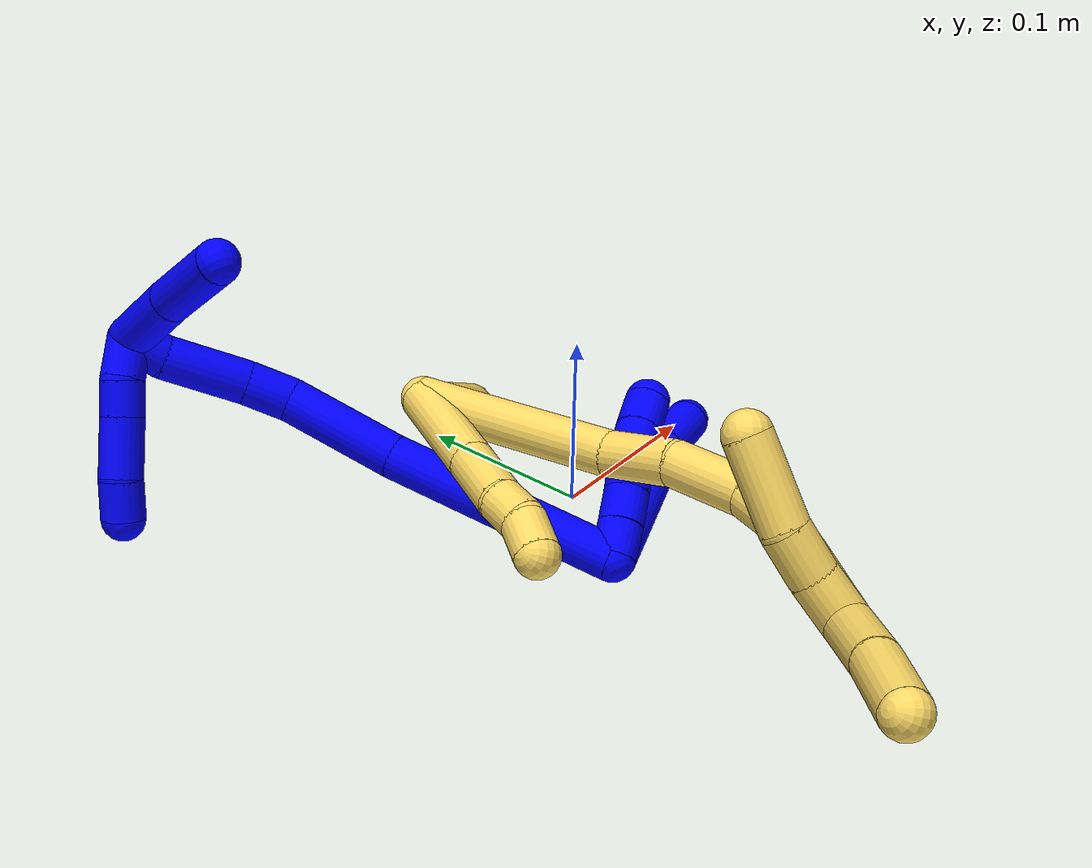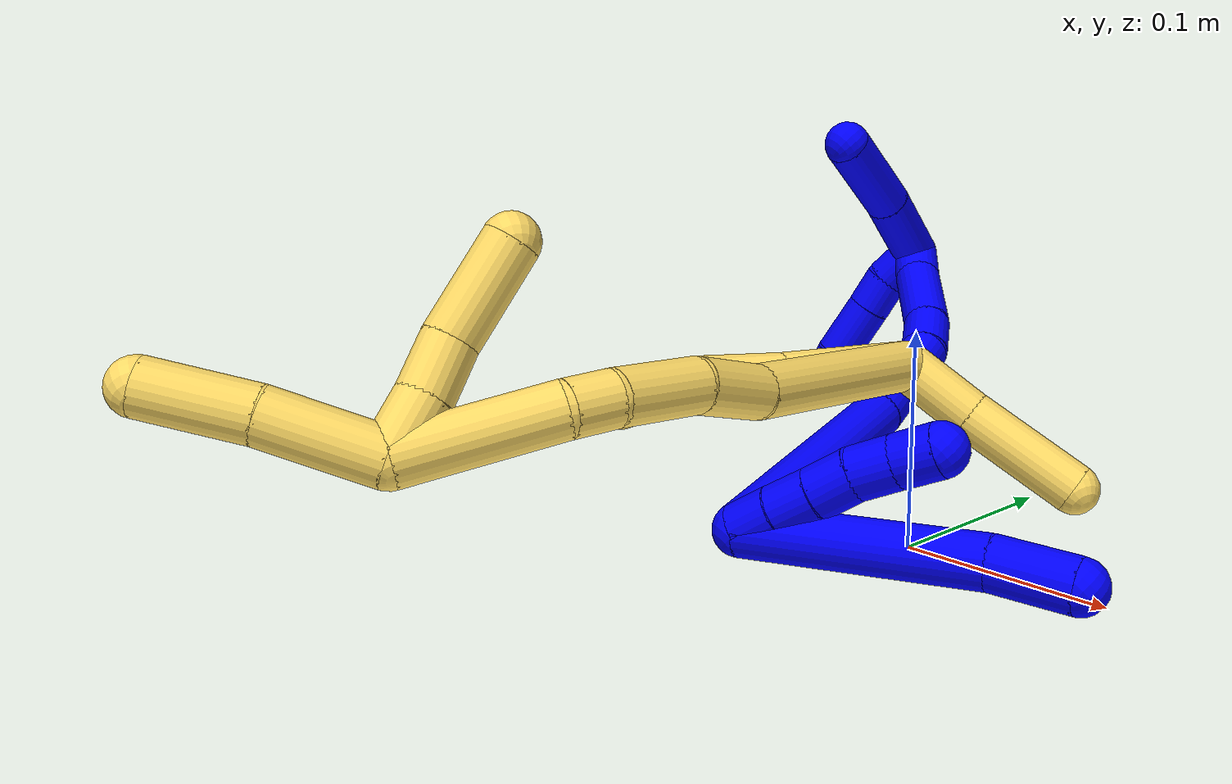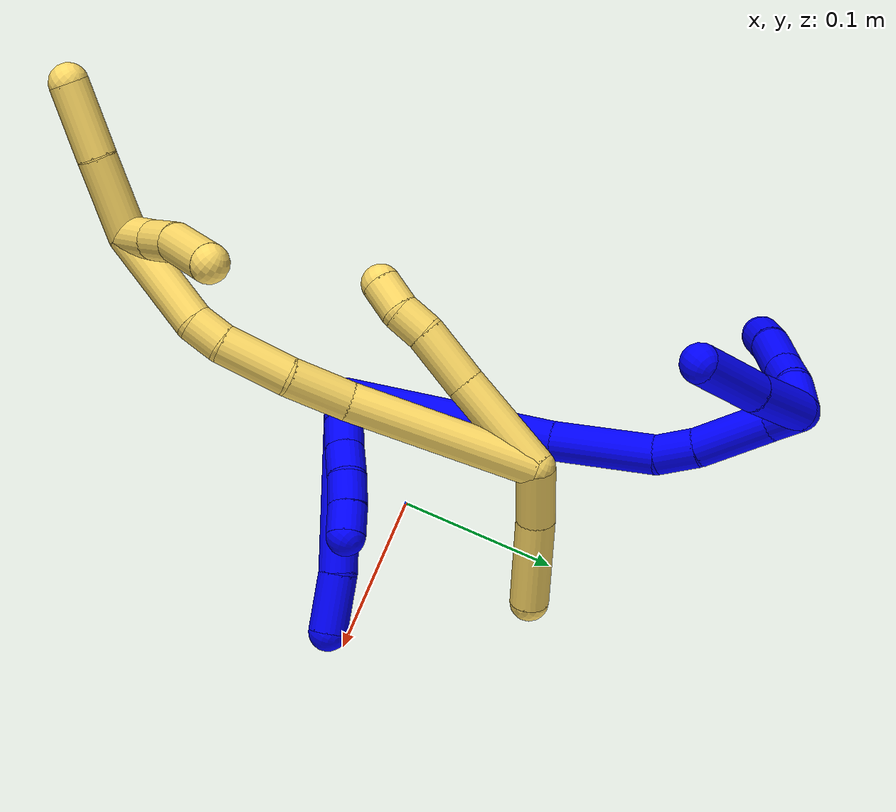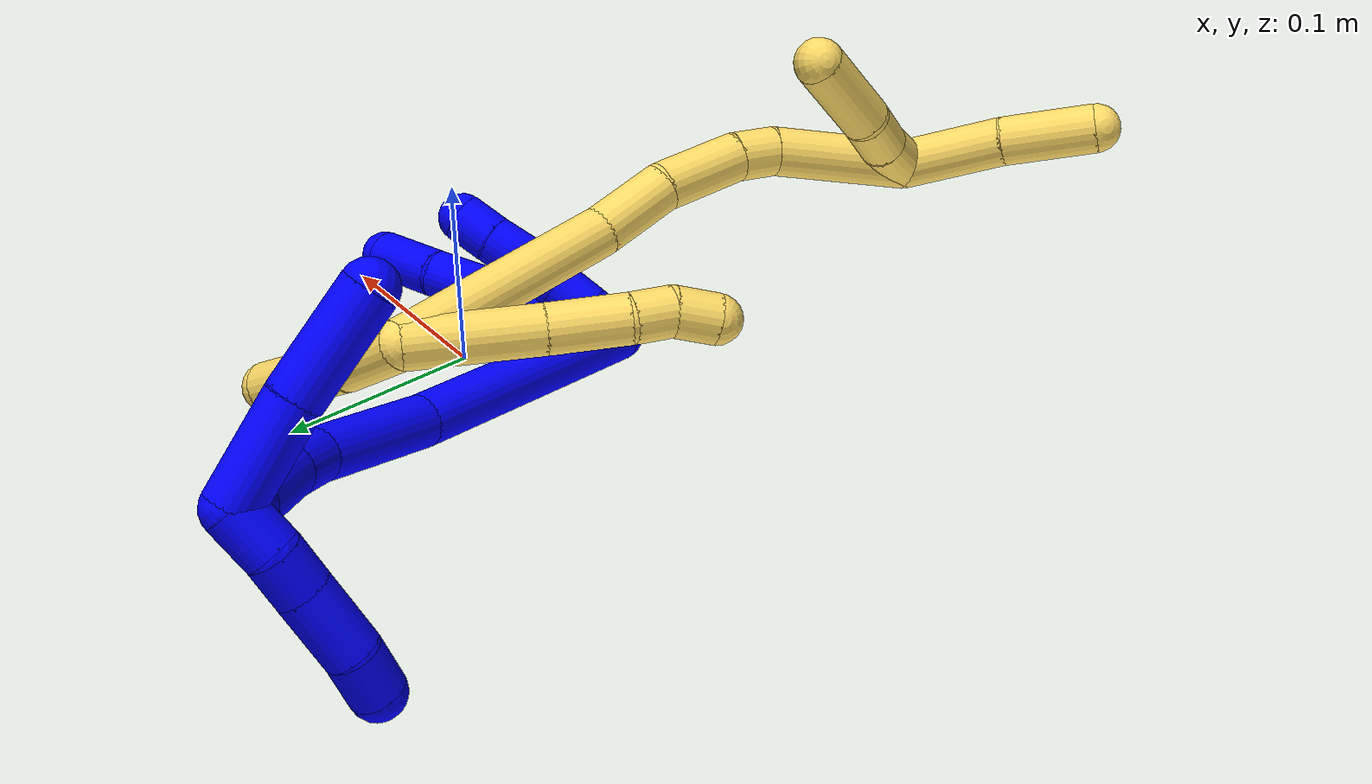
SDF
<sdf version="1.7">
 <world name="default">
  <model name="1">
   <static>0</static>
   <link name="1">
    <collision name="collision-cylinder-e_1_2_8">
     <pose>0.043331 0.019047 0.029953 -0.566393 0.884479 -0.273881</pose>
     <geometry><cylinder><radius>0.0125</radius><length>0.112028</length></cylinder></geometry>
     <surface>
      <friction><ode><mu>1.16</mu><mu2>1.16</mu2><slip1>0</slip1><slip2>0</slip2></ode></friction>
      <contact><ode><kp>1e+06</kp><kd>1</kd><max_vel>0</max_vel><min_depth>0.001</min_depth></ode></contact>
     </surface>
    </collision>
    <visual name="visual-cylinder-e_1_2_8">
     <pose>0.043331 0.019047 0.029953 -0.566393 0.884479 -0.273881</pose>
     <geometry><cylinder><radius>0.0125</radius><length>0.112028</length></cylinder></geometry>
     <material><ambient>0 0 1 1</ambient></material>
    </visual>
    <collision name="collision-cylinder-e_2_8_6">
     <pose>0.102914 0.044404 0.067424 -0.698284 1.02742 -0.405192</pose>
     <geometry><cylinder><radius>0.0125</radius><length>0.037972</length></cylinder></geometry>
     <surface>
      <friction><ode><mu>1.16</mu><mu2>1.16</mu2><slip1>0</slip1><slip2>0</slip2></ode></friction>
      <contact><ode><kp>1e+06</kp><kd>1</kd><max_vel>0</max_vel><min_depth>0.001</min_depth></ode></contact>
     </surface>
    </collision>
    <visual name="visual-cylinder-e_2_8_6">
     <pose>0.102914 0.044404 0.067424 -0.698284 1.02742 -0.405192</pose>
     <geometry><cylinder><radius>0.0125</radius><length>0.037972</length></cylinder></geometry>
     <material><ambient>0 0 1 1</ambient></material>
    </visual>
    <collision name="collision-cylinder-e_1_2_9">
     <pose>0.006094 -0.001065 0.007857 0.134735 0.655279 0.045856</pose>
     <geometry><cylinder><radius>0.0125</radius><length>0.02</length></cylinder></geometry>
     <surface>
      <friction><ode><mu>1.16</mu><mu2>1.16</mu2><slip1>0</slip1><slip2>0</slip2></ode></friction>
      <contact><ode><kp>1e+06</kp><kd>1</kd><max_vel>0</max_vel><min_depth>0.001</min_depth></ode></contact>
     </surface>
    </collision>
    <visual name="visual-cylinder-e_1_2_9">
     <pose>0.006094 -0.001065 0.007857 0.134735 0.655279 0.045856</pose>
     <geometry><cylinder><radius>0.0125</radius><length>0.02</length></cylinder></geometry>
     <material><ambient>0 0 1 1</ambient></material>
    </visual>
    <collision name="collision-cylinder-e_2_9_10">
     <pose>0.01809 -0.00271 0.023765 0.071867 0.631391 0.023482</pose>
     <geometry><cylinder><radius>0.0125</radius><length>0.02</length></cylinder></geometry>
     <surface>
      <friction><ode><mu>1.16</mu><mu2>1.16</mu2><slip1>0</slip1><slip2>0</slip2></ode></friction>
      <contact><ode><kp>1e+06</kp><kd>1</kd><max_vel>0</max_vel><min_depth>0.001</min_depth></ode></contact>
     </surface>
    </collision>
    <visual name="visual-cylinder-e_2_9_10">
     <pose>0.01809 -0.00271 0.023765 0.071867 0.631391 0.023482</pose>
     <geometry><cylinder><radius>0.0125</radius><length>0.02</length></cylinder></geometry>
     <material><ambient>0 0 1 1</ambient></material>
    </visual>
    <collision name="collision-cylinder-e_3_10_11">
     <pose>0.0295 -0.0039 0.040141 0.073247 0.583172 0.021993</pose>
     <geometry><cylinder><radius>0.0125</radius><length>0.02</length></cylinder></geometry>
     <surface>
      <friction><ode><mu>1.16</mu><mu2>1.16</mu2><slip1>0</slip1><slip2>0</slip2></ode></friction>
      <contact><ode><kp>1e+06</kp><kd>1</kd><max_vel>0</max_vel><min_depth>0.001</min_depth></ode></contact>
     </surface>
    </collision>
    <visual name="visual-cylinder-e_3_10_11">
     <pose>0.0295 -0.0039 0.040141 0.073247 0.583172 0.021993</pose>
     <geometry><cylinder><radius>0.0125</radius><length>0.02</length></cylinder></geometry>
     <material><ambient>0 0 1 1</ambient></material>
    </visual>
    <collision name="collision-cylinder-e_4_11_12">
     <pose>0.041542 -0.003891 0.05601 -0.082027 0.712235 -0.030527</pose>
     <geometry><cylinder><radius>0.0125</radius><length>0.02</length></cylinder></geometry>
     <surface>
      <friction><ode><mu>1.16</mu><mu2>1.16</mu2><slip1>0</slip1><slip2>0</slip2></ode></friction>
      <contact><ode><kp>1e+06</kp><kd>1</kd><max_vel>0</max_vel><min_depth>0.001</min_depth></ode></contact>
     </surface>
    </collision>
    <visual name="visual-cylinder-e_4_11_12">
     <pose>0.041542 -0.003891 0.05601 -0.082027 0.712235 -0.030527</pose>
     <geometry><cylinder><radius>0.0125</radius><length>0.02</length></cylinder></geometry>
     <material><ambient>0 0 1 1</ambient></material>
    </visual>
    <collision name="collision-cylinder-e_5_12_5">
     <pose>0.055154 -0.003058 0.070615 -0.030165 0.786179 -0.012509</pose>
     <geometry><cylinder><radius>0.0125</radius><length>0.02</length></cylinder></geometry>
     <surface>
      <friction><ode><mu>1.16</mu><mu2>1.16</mu2><slip1>0</slip1><slip2>0</slip2></ode></friction>
      <contact><ode><kp>1e+06</kp><kd>1</kd><max_vel>0</max_vel><min_depth>0.001</min_depth></ode></contact>
     </surface>
    </collision>
    <visual name="visual-cylinder-e_5_12_5">
     <pose>0.055154 -0.003058 0.070615 -0.030165 0.786179 -0.012509</pose>
     <geometry><cylinder><radius>0.0125</radius><length>0.02</length></cylinder></geometry>
     <material><ambient>0 0 1 1</ambient></material>
    </visual>
    <collision name="collision-cylinder-e_1_2_13">
     <pose>-0.032925 0.028428 0.052665 -0.494964 -0.502952 0.129643</pose>
     <geometry><cylinder><radius>0.0125</radius><length>0.136612</length></cylinder></geometry>
     <surface>
      <friction><ode><mu>1.16</mu><mu2>1.16</mu2><slip1>0</slip1><slip2>0</slip2></ode></friction>
      <contact><ode><kp>1e+06</kp><kd>1</kd><max_vel>0</max_vel><min_depth>0.001</min_depth></ode></contact>
     </surface>
    </collision>
    <visual name="visual-cylinder-e_1_2_13">
     <pose>-0.032925 0.028428 0.052665 -0.494964 -0.502952 0.129643</pose>
     <geometry><cylinder><radius>0.0125</radius><length>0.136612</length></cylinder></geometry>
     <material><ambient>0 0 1 1</ambient></material>
    </visual>
    <collision name="collision-cylinder-e_2_13_14">
     <pose>-0.083698 0.065986 0.132351 -0.325879 -0.559155 0.094326</pose>
     <geometry><cylinder><radius>0.0125</radius><length>0.067294</length></cylinder></geometry>
     <surface>
      <friction><ode><mu>1.16</mu><mu2>1.16</mu2><slip1>0</slip1><slip2>0</slip2></ode></friction>
      <contact><ode><kp>1e+06</kp><kd>1</kd><max_vel>0</max_vel><min_depth>0.001</min_depth></ode></contact>
     </surface>
    </collision>
    <visual name="visual-cylinder-e_2_13_14">
     <pose>-0.083698 0.065986 0.132351 -0.325879 -0.559155 0.094326</pose>
     <geometry><cylinder><radius>0.0125</radius><length>0.067294</length></cylinder></geometry>
     <material><ambient>0 0 1 1</ambient></material>
    </visual>
    <collision name="collision-cylinder-e_3_14_15">
     <pose>-0.111416 0.076421 0.168151 -0.147399 -0.838434 0.065782</pose>
     <geometry><cylinder><radius>0.0125</radius><length>0.026544</length></cylinder></geometry>
     <surface>
      <friction><ode><mu>1.16</mu><mu2>1.16</mu2><slip1>0</slip1><slip2>0</slip2></ode></friction>
      <contact><ode><kp>1e+06</kp><kd>1</kd><max_vel>0</max_vel><min_depth>0.001</min_depth></ode></contact>
     </surface>
    </collision>
    <visual name="visual-cylinder-e_3_14_15">
     <pose>-0.111416 0.076421 0.168151 -0.147399 -0.838434 0.065782</pose>
     <geometry><cylinder><radius>0.0125</radius><length>0.026544</length></cylinder></geometry>
     <material><ambient>0 0 1 1</ambient></material>
    </visual>
    <collision name="collision-cylinder-e_4_15_16">
     <pose>-0.141423 0.077911 0.190466 -0.013812 -0.978926 0.007358</pose>
     <geometry><cylinder><radius>0.0125</radius><length>0.048532</length></cylinder></geometry>
     <surface>
      <friction><ode><mu>1.16</mu><mu2>1.16</mu2><slip1>0</slip1><slip2>0</slip2></ode></friction>
      <contact><ode><kp>1e+06</kp><kd>1</kd><max_vel>0</max_vel><min_depth>0.001</min_depth></ode></contact>
     </surface>
    </collision>
    <visual name="visual-cylinder-e_4_15_16">
     <pose>-0.141423 0.077911 0.190466 -0.013812 -0.978926 0.007358</pose>
     <geometry><cylinder><radius>0.0125</radius><length>0.048532</length></cylinder></geometry>
     <material><ambient>0 0 1 1</ambient></material>
    </visual>
    <collision name="collision-cylinder-e_5_16_1">
     <pose>-0.16933 0.076213 0.210823 0.269723 -0.831976 -0.11974</pose>
     <geometry><cylinder><radius>0.0125</radius><length>0.021017</length></cylinder></geometry>
     <surface>
      <friction><ode><mu>1.16</mu><mu2>1.16</mu2><slip1>0</slip1><slip2>0</slip2></ode></friction>
      <contact><ode><kp>1e+06</kp><kd>1</kd><max_vel>0</max_vel><min_depth>0.001</min_depth></ode></contact>
     </surface>
    </collision>
    <visual name="visual-cylinder-e_5_16_1">
     <pose>-0.16933 0.076213 0.210823 0.269723 -0.831976 -0.11974</pose>
     <geometry><cylinder><radius>0.0125</radius><length>0.021017</length></cylinder></geometry>
     <material><ambient>0 0 1 1</ambient></material>
    </visual>
    <collision name="collision-cylinder-e_1_1_17">
     <pose>-0.171383 0.050968 0.216005 1.64085 0.239408 0.256611</pose>
     <geometry><cylinder><radius>0.0125</radius><length>0.048207</length></cylinder></geometry>
     <surface>
      <friction><ode><mu>1.16</mu><mu2>1.16</mu2><slip1>0</slip1><slip2>0</slip2></ode></friction>
      <contact><ode><kp>1e+06</kp><kd>1</kd><max_vel>0</max_vel><min_depth>0.001</min_depth></ode></contact>
     </surface>
    </collision>
    <visual name="visual-cylinder-e_1_1_17">
     <pose>-0.171383 0.050968 0.216005 1.64085 0.239408 0.256611</pose>
     <geometry><cylinder><radius>0.0125</radius><length>0.048207</length></cylinder></geometry>
     <material><ambient>0 0 1 1</ambient></material>
    </visual>
    <collision name="collision-cylinder-e_2_17_4">
     <pose>-0.160511 0.002469 0.210906 1.70758 0.200449 0.229687</pose>
     <geometry><cylinder><radius>0.0125</radius><length>0.051793</length></cylinder></geometry>
     <surface>
      <friction><ode><mu>1.16</mu><mu2>1.16</mu2><slip1>0</slip1><slip2>0</slip2></ode></friction>
      <contact><ode><kp>1e+06</kp><kd>1</kd><max_vel>0</max_vel><min_depth>0.001</min_depth></ode></contact>
     </surface>
    </collision>
    <visual name="visual-cylinder-e_2_17_4">
     <pose>-0.160511 0.002469 0.210906 1.70758 0.200449 0.229687</pose>
     <geometry><cylinder><radius>0.0125</radius><length>0.051793</length></cylinder></geometry>
     <material><ambient>0 0 1 1</ambient></material>
    </visual>
    <collision name="collision-cylinder-e_1_1_18">
     <pose>-0.18237 0.077592 0.20765 -2.82584 -0.464749 1.95722</pose>
     <geometry><cylinder><radius>0.0125</radius><length>0.023523</length></cylinder></geometry>
     <surface>
      <friction><ode><mu>1.16</mu><mu2>1.16</mu2><slip1>0</slip1><slip2>0</slip2></ode></friction>
      <contact><ode><kp>1e+06</kp><kd>1</kd><max_vel>0</max_vel><min_depth>0.001</min_depth></ode></contact>
     </surface>
    </collision>
    <visual name="visual-cylinder-e_1_1_18">
     <pose>-0.18237 0.077592 0.20765 -2.82584 -0.464749 1.95722</pose>
     <geometry><cylinder><radius>0.0125</radius><length>0.023523</length></cylinder></geometry>
     <material><ambient>0 0 1 1</ambient></material>
    </visual>
    <collision name="collision-cylinder-e_2_18_19">
     <pose>-0.189972 0.085278 0.188866 -2.6755 -0.232569 0.914669</pose>
     <geometry><cylinder><radius>0.0125</radius><length>0.020222</length></cylinder></geometry>
     <surface>
      <friction><ode><mu>1.16</mu><mu2>1.16</mu2><slip1>0</slip1><slip2>0</slip2></ode></friction>
      <contact><ode><kp>1e+06</kp><kd>1</kd><max_vel>0</max_vel><min_depth>0.001</min_depth></ode></contact>
     </surface>
    </collision>
    <visual name="visual-cylinder-e_2_18_19">
     <pose>-0.189972 0.085278 0.188866 -2.6755 -0.232569 0.914669</pose>
     <geometry><cylinder><radius>0.0125</radius><length>0.020222</length></cylinder></geometry>
     <material><ambient>0 0 1 1</ambient></material>
    </visual>
    <collision name="collision-cylinder-e_3_19_20">
     <pose>-0.196754 0.096859 0.165313 -2.69006 -0.264895 1.05125</pose>
     <geometry><cylinder><radius>0.0125</radius><length>0.034002</length></cylinder></geometry>
     <surface>
      <friction><ode><mu>1.16</mu><mu2>1.16</mu2><slip1>0</slip1><slip2>0</slip2></ode></friction>
      <contact><ode><kp>1e+06</kp><kd>1</kd><max_vel>0</max_vel><min_depth>0.001</min_depth></ode></contact>
     </surface>
    </collision>
    <visual name="visual-cylinder-e_3_19_20">
     <pose>-0.196754 0.096859 0.165313 -2.69006 -0.264895 1.05125</pose>
     <geometry><cylinder><radius>0.0125</radius><length>0.034002</length></cylinder></geometry>
     <material><ambient>0 0 1 1</ambient></material>
    </visual>
    <collision name="collision-cylinder-e_4_20_3">
     <pose>-0.202623 0.110004 0.141278 -2.56832 -0.127812 0.42758</pose>
     <geometry><cylinder><radius>0.0125</radius><length>0.022252</length></cylinder></geometry>
     <surface>
      <friction><ode><mu>1.16</mu><mu2>1.16</mu2><slip1>0</slip1><slip2>0</slip2></ode></friction>
      <contact><ode><kp>1e+06</kp><kd>1</kd><max_vel>0</max_vel><min_depth>0.001</min_depth></ode></contact>
     </surface>
    </collision>
    <visual name="visual-cylinder-e_4_20_3">
     <pose>-0.202623 0.110004 0.141278 -2.56832 -0.127812 0.42758</pose>
     <geometry><cylinder><radius>0.0125</radius><length>0.022252</length></cylinder></geometry>
     <material><ambient>0 0 1 1</ambient></material>
    </visual>
    <collision name="collision-sphere-3">
     <pose>-0.204041 0.11599 0.132007 0 -0 0</pose>
     <geometry><sphere><radius>0.0125</radius></sphere></geometry>
     <surface>
      <friction><ode><mu>1.16</mu><mu2>1.16</mu2><slip1>0</slip1><slip2>0</slip2></ode></friction>
      <contact><ode><kp>1e+06</kp><kd>1</kd><max_vel>0</max_vel><min_depth>0.001</min_depth></ode></contact>
     </surface>
    </collision>
    <visual name="visual-sphere-3">
     <pose>-0.204041 0.11599 0.132007 0 -0 0</pose>
     <geometry><sphere><radius>0.0125</radius></sphere></geometry>
     <material><ambient>0 0 1 1</ambient></material>
    </visual>
    <collision name="collision-sphere-20">
     <pose>-0.201205 0.104019 0.150549 0 -0 0</pose>
     <geometry><sphere><radius>0.0125</radius></sphere></geometry>
     <surface>
      <friction><ode><mu>1.16</mu><mu2>1.16</mu2><slip1>0</slip1><slip2>0</slip2></ode></friction>
      <contact><ode><kp>1e+06</kp><kd>1</kd><max_vel>0</max_vel><min_depth>0.001</min_depth></ode></contact>
     </surface>
    </collision>
    <visual name="visual-sphere-20">
     <pose>-0.201205 0.104019 0.150549 0 -0 0</pose>
     <geometry><sphere><radius>0.0125</radius></sphere></geometry>
     <material><ambient>0 0 1 1</ambient></material>
    </visual>
    <collision name="collision-sphere-19">
     <pose>-0.192303 0.0897 0.180077 0 -0 0</pose>
     <geometry><sphere><radius>0.0125</radius></sphere></geometry>
     <surface>
      <friction><ode><mu>1.16</mu><mu2>1.16</mu2><slip1>0</slip1><slip2>0</slip2></ode></friction>
      <contact><ode><kp>1e+06</kp><kd>1</kd><max_vel>0</max_vel><min_depth>0.001</min_depth></ode></contact>
     </surface>
    </collision>
    <visual name="visual-sphere-19">
     <pose>-0.192303 0.0897 0.180077 0 -0 0</pose>
     <geometry><sphere><radius>0.0125</radius></sphere></geometry>
     <material><ambient>0 0 1 1</ambient></material>
    </visual>
    <collision name="collision-sphere-11">
     <pose>0.035006 -0.004511 0.048466 0 -0 0</pose>
     <geometry><sphere><radius>0.0125</radius></sphere></geometry>
     <surface>
      <friction><ode><mu>1.16</mu><mu2>1.16</mu2><slip1>0</slip1><slip2>0</slip2></ode></friction>
      <contact><ode><kp>1e+06</kp><kd>1</kd><max_vel>0</max_vel><min_depth>0.001</min_depth></ode></contact>
     </surface>
    </collision>
    <visual name="visual-sphere-11">
     <pose>0.035006 -0.004511 0.048466 0 -0 0</pose>
     <geometry><sphere><radius>0.0125</radius></sphere></geometry>
     <material><ambient>0 0 1 1</ambient></material>
    </visual>
    <collision name="collision-sphere-10">
     <pose>0.023993 -0.003289 0.031816 0 -0 0</pose>
     <geometry><sphere><radius>0.0125</radius></sphere></geometry>
     <surface>
      <friction><ode><mu>1.16</mu><mu2>1.16</mu2><slip1>0</slip1><slip2>0</slip2></ode></friction>
      <contact><ode><kp>1e+06</kp><kd>1</kd><max_vel>0</max_vel><min_depth>0.001</min_depth></ode></contact>
     </surface>
    </collision>
    <visual name="visual-sphere-10">
     <pose>0.023993 -0.003289 0.031816 0 -0 0</pose>
     <geometry><sphere><radius>0.0125</radius></sphere></geometry>
     <material><ambient>0 0 1 1</ambient></material>
    </visual>
    <collision name="collision-sphere-6">
     <pose>0.119166 0.050715 0.074943 0 -0 0</pose>
     <geometry><sphere><radius>0.0125</radius></sphere></geometry>
     <surface>
      <friction><ode><mu>1.16</mu><mu2>1.16</mu2><slip1>0</slip1><slip2>0</slip2></ode></friction>
      <contact><ode><kp>1e+06</kp><kd>1</kd><max_vel>0</max_vel><min_depth>0.001</min_depth></ode></contact>
     </surface>
    </collision>
    <visual name="visual-sphere-6">
     <pose>0.119166 0.050715 0.074943 0 -0 0</pose>
     <geometry><sphere><radius>0.0125</radius></sphere></geometry>
     <material><ambient>0 0 1 1</ambient></material>
    </visual>
    <collision name="collision-sphere-9">
     <pose>0.012188 -0.00213 0.015714 0 -0 0</pose>
     <geometry><sphere><radius>0.0125</radius></sphere></geometry>
     <surface>
      <friction><ode><mu>1.16</mu><mu2>1.16</mu2><slip1>0</slip1><slip2>0</slip2></ode></friction>
      <contact><ode><kp>1e+06</kp><kd>1</kd><max_vel>0</max_vel><min_depth>0.001</min_depth></ode></contact>
     </surface>
    </collision>
    <visual name="visual-sphere-9">
     <pose>0.012188 -0.00213 0.015714 0 -0 0</pose>
     <geometry><sphere><radius>0.0125</radius></sphere></geometry>
     <material><ambient>0 0 1 1</ambient></material>
    </visual>
    <collision name="collision-sphere-2">
     <geometry><sphere><radius>0.0125</radius></sphere></geometry>
     <surface>
      <friction><ode><mu>1.16</mu><mu2>1.16</mu2><slip1>0</slip1><slip2>0</slip2></ode></friction>
      <contact><ode><kp>1e+06</kp><kd>1</kd><max_vel>0</max_vel><min_depth>0.001</min_depth></ode></contact>
     </surface>
    </collision>
    <visual name="visual-sphere-2">
     <geometry><sphere><radius>0.0125</radius></sphere></geometry>
     <material><ambient>0 0 1 1</ambient></material>
    </visual>
    <collision name="collision-sphere-8">
     <pose>0.086663 0.038093 0.059905 0 -0 0</pose>
     <geometry><sphere><radius>0.0125</radius></sphere></geometry>
     <surface>
      <friction><ode><mu>1.16</mu><mu2>1.16</mu2><slip1>0</slip1><slip2>0</slip2></ode></friction>
      <contact><ode><kp>1e+06</kp><kd>1</kd><max_vel>0</max_vel><min_depth>0.001</min_depth></ode></contact>
     </surface>
    </collision>
    <visual name="visual-sphere-8">
     <pose>0.086663 0.038093 0.059905 0 -0 0</pose>
     <geometry><sphere><radius>0.0125</radius></sphere></geometry>
     <material><ambient>0 0 1 1</ambient></material>
    </visual>
    <collision name="collision-sphere-12">
     <pose>0.048077 -0.003271 0.063553 0 -0 0</pose>
     <geometry><sphere><radius>0.0125</radius></sphere></geometry>
     <surface>
      <friction><ode><mu>1.16</mu><mu2>1.16</mu2><slip1>0</slip1><slip2>0</slip2></ode></friction>
      <contact><ode><kp>1e+06</kp><kd>1</kd><max_vel>0</max_vel><min_depth>0.001</min_depth></ode></contact>
     </surface>
    </collision>
    <visual name="visual-sphere-12">
     <pose>0.048077 -0.003271 0.063553 0 -0 0</pose>
     <geometry><sphere><radius>0.0125</radius></sphere></geometry>
     <material><ambient>0 0 1 1</ambient></material>
    </visual>
    <collision name="collision-sphere-5">
     <pose>0.06223 -0.002845 0.077678 0 -0 0</pose>
     <geometry><sphere><radius>0.0125</radius></sphere></geometry>
     <surface>
      <friction><ode><mu>1.16</mu><mu2>1.16</mu2><slip1>0</slip1><slip2>0</slip2></ode></friction>
      <contact><ode><kp>1e+06</kp><kd>1</kd><max_vel>0</max_vel><min_depth>0.001</min_depth></ode></contact>
     </surface>
    </collision>
    <visual name="visual-sphere-5">
     <pose>0.06223 -0.002845 0.077678 0 -0 0</pose>
     <geometry><sphere><radius>0.0125</radius></sphere></geometry>
     <material><ambient>0 0 1 1</ambient></material>
    </visual>
    <collision name="collision-sphere-13">
     <pose>-0.065849 0.056855 0.10533 0 -0 0</pose>
     <geometry><sphere><radius>0.0125</radius></sphere></geometry>
     <surface>
      <friction><ode><mu>1.16</mu><mu2>1.16</mu2><slip1>0</slip1><slip2>0</slip2></ode></friction>
      <contact><ode><kp>1e+06</kp><kd>1</kd><max_vel>0</max_vel><min_depth>0.001</min_depth></ode></contact>
     </surface>
    </collision>
    <visual name="visual-sphere-13">
     <pose>-0.065849 0.056855 0.10533 0 -0 0</pose>
     <geometry><sphere><radius>0.0125</radius></sphere></geometry>
     <material><ambient>0 0 1 1</ambient></material>
    </visual>
    <collision name="collision-sphere-14">
     <pose>-0.101547 0.075118 0.159373 0 -0 0</pose>
     <geometry><sphere><radius>0.0125</radius></sphere></geometry>
     <surface>
      <friction><ode><mu>1.16</mu><mu2>1.16</mu2><slip1>0</slip1><slip2>0</slip2></ode></friction>
      <contact><ode><kp>1e+06</kp><kd>1</kd><max_vel>0</max_vel><min_depth>0.001</min_depth></ode></contact>
     </surface>
    </collision>
    <visual name="visual-sphere-14">
     <pose>-0.101547 0.075118 0.159373 0 -0 0</pose>
     <geometry><sphere><radius>0.0125</radius></sphere></geometry>
     <material><ambient>0 0 1 1</ambient></material>
    </visual>
    <collision name="collision-sphere-15">
     <pose>-0.121285 0.077724 0.176928 0 -0 0</pose>
     <geometry><sphere><radius>0.0125</radius></sphere></geometry>
     <surface>
      <friction><ode><mu>1.16</mu><mu2>1.16</mu2><slip1>0</slip1><slip2>0</slip2></ode></friction>
      <contact><ode><kp>1e+06</kp><kd>1</kd><max_vel>0</max_vel><min_depth>0.001</min_depth></ode></contact>
     </surface>
    </collision>
    <visual name="visual-sphere-15">
     <pose>-0.121285 0.077724 0.176928 0 -0 0</pose>
     <geometry><sphere><radius>0.0125</radius></sphere></geometry>
     <material><ambient>0 0 1 1</ambient></material>
    </visual>
    <collision name="collision-sphere-16">
     <pose>-0.161561 0.078098 0.204003 0 -0 0</pose>
     <geometry><sphere><radius>0.0125</radius></sphere></geometry>
     <surface>
      <friction><ode><mu>1.16</mu><mu2>1.16</mu2><slip1>0</slip1><slip2>0</slip2></ode></friction>
      <contact><ode><kp>1e+06</kp><kd>1</kd><max_vel>0</max_vel><min_depth>0.001</min_depth></ode></contact>
     </surface>
    </collision>
    <visual name="visual-sphere-16">
     <pose>-0.161561 0.078098 0.204003 0 -0 0</pose>
     <geometry><sphere><radius>0.0125</radius></sphere></geometry>
     <material><ambient>0 0 1 1</ambient></material>
    </visual>
    <collision name="collision-sphere-1">
     <pose>-0.177099 0.074327 0.217644 0 -0 0</pose>
     <geometry><sphere><radius>0.0125</radius></sphere></geometry>
     <surface>
      <friction><ode><mu>1.16</mu><mu2>1.16</mu2><slip1>0</slip1><slip2>0</slip2></ode></friction>
      <contact><ode><kp>1e+06</kp><kd>1</kd><max_vel>0</max_vel><min_depth>0.001</min_depth></ode></contact>
     </surface>
    </collision>
    <visual name="visual-sphere-1">
     <pose>-0.177099 0.074327 0.217644 0 -0 0</pose>
     <geometry><sphere><radius>0.0125</radius></sphere></geometry>
     <material><ambient>0 0 1 1</ambient></material>
    </visual>
    <collision name="collision-sphere-18">
     <pose>-0.187642 0.080857 0.197656 0 -0 0</pose>
     <geometry><sphere><radius>0.0125</radius></sphere></geometry>
     <surface>
      <friction><ode><mu>1.16</mu><mu2>1.16</mu2><slip1>0</slip1><slip2>0</slip2></ode></friction>
      <contact><ode><kp>1e+06</kp><kd>1</kd><max_vel>0</max_vel><min_depth>0.001</min_depth></ode></contact>
     </surface>
    </collision>
    <visual name="visual-sphere-18">
     <pose>-0.187642 0.080857 0.197656 0 -0 0</pose>
     <geometry><sphere><radius>0.0125</radius></sphere></geometry>
     <material><ambient>0 0 1 1</ambient></material>
    </visual>
    <collision name="collision-sphere-17">
     <pose>-0.165668 0.02761 0.214366 0 -0 0</pose>
     <geometry><sphere><radius>0.0125</radius></sphere></geometry>
     <surface>
      <friction><ode><mu>1.16</mu><mu2>1.16</mu2><slip1>0</slip1><slip2>0</slip2></ode></friction>
      <contact><ode><kp>1e+06</kp><kd>1</kd><max_vel>0</max_vel><min_depth>0.001</min_depth></ode></contact>
     </surface>
    </collision>
    <visual name="visual-sphere-17">
     <pose>-0.165668 0.02761 0.214366 0 -0 0</pose>
     <geometry><sphere><radius>0.0125</radius></sphere></geometry>
     <material><ambient>0 0 1 1</ambient></material>
    </visual>
    <collision name="collision-sphere-4">
     <pose>-0.155355 -0.022672 0.207446 0 -0 0</pose>
     <geometry><sphere><radius>0.0125</radius></sphere></geometry>
     <surface>
      <friction><ode><mu>1.16</mu><mu2>1.16</mu2><slip1>0</slip1><slip2>0</slip2></ode></friction>
      <contact><ode><kp>1e+06</kp><kd>1</kd><max_vel>0</max_vel><min_depth>0.001</min_depth></ode></contact>
     </surface>
    </collision>
    <visual name="visual-sphere-4">
     <pose>-0.155355 -0.022672 0.207446 0 -0 0</pose>
     <geometry><sphere><radius>0.0125</radius></sphere></geometry>
     <material><ambient>0 0 1 1</ambient></material>
    </visual>
    <inertial>
     <pose>-0.063528 0.041518 0.11057 0 -0 0</pose>
     <mass>0.75</mass>
     <inertia>
      <ixx>0.00035</ixx>
      <ixy>0</ixy>
      <ixz>0</ixz>
      <iyy>0.000384</iyy>
      <iyz>0</iyz>
      <izz>-7.4e-05</izz>
     </inertia>
    </inertial>
   </link>
   <pose>-0.046306 -0.062907 0.0123 -0.915555 0.052481 -0.304359</pose>
  </model>
  <model name="5">
   <static>0</static>
   <link name="5">
    <collision name="collision-cylinder-e_1_2_8">
     <pose>-0.023593 -0.02376 0.002569 1.46311 -0.778971 -0.706069</pose>
     <geometry><cylinder><radius>0.0125</radius><length>0.067165</length></cylinder></geometry>
     <surface>
      <friction><ode><mu>1.16</mu><mu2>1.16</mu2><slip1>0</slip1><slip2>0</slip2></ode></friction>
      <contact><ode><kp>1e+06</kp><kd>1</kd><max_vel>0</max_vel><min_depth>0.001</min_depth></ode></contact>
     </surface>
    </collision>
    <visual name="visual-cylinder-e_1_2_8">
     <pose>-0.023593 -0.02376 0.002569 1.46311 -0.778971 -0.706069</pose>
     <geometry><cylinder><radius>0.0125</radius><length>0.067165</length></cylinder></geometry>
     <material><ambient>1 0.858824 0.4 1</ambient></material>
    </visual>
    <collision name="collision-cylinder-e_2_8_9">
     <pose>-0.060828 -0.061896 0.007606 1.40074 -0.751956 -0.642447</pose>
     <geometry><cylinder><radius>0.0125</radius><length>0.039943</length></cylinder></geometry>
     <surface>
      <friction><ode><mu>1.16</mu><mu2>1.16</mu2><slip1>0</slip1><slip2>0</slip2></ode></friction>
      <contact><ode><kp>1e+06</kp><kd>1</kd><max_vel>0</max_vel><min_depth>0.001</min_depth></ode></contact>
     </surface>
    </collision>
    <visual name="visual-cylinder-e_2_8_9">
     <pose>-0.060828 -0.061896 0.007606 1.40074 -0.751956 -0.642447</pose>
     <geometry><cylinder><radius>0.0125</radius><length>0.039943</length></cylinder></geometry>
     <material><ambient>1 0.858824 0.4 1</ambient></material>
    </visual>
    <collision name="collision-cylinder-e_3_9_10">
     <pose>-0.081328 -0.084058 0.009346 1.66414 -0.719957 -0.783771</pose>
     <geometry><cylinder><radius>0.0125</radius><length>0.020802</length></cylinder></geometry>
     <surface>
      <friction><ode><mu>1.16</mu><mu2>1.16</mu2><slip1>0</slip1><slip2>0</slip2></ode></friction>
      <contact><ode><kp>1e+06</kp><kd>1</kd><max_vel>0</max_vel><min_depth>0.001</min_depth></ode></contact>
     </surface>
    </collision>
    <visual name="visual-cylinder-e_3_9_10">
     <pose>-0.081328 -0.084058 0.009346 1.66414 -0.719957 -0.783771</pose>
     <geometry><cylinder><radius>0.0125</radius><length>0.020802</length></cylinder></geometry>
     <material><ambient>1 0.858824 0.4 1</ambient></material>
    </visual>
    <collision name="collision-cylinder-e_4_10_6">
     <pose>-0.09781 -0.09726 0.008845 1.52858 -1.0578 -1.02139</pose>
     <geometry><cylinder><radius>0.0125</radius><length>0.02209</length></cylinder></geometry>
     <surface>
      <friction><ode><mu>1.16</mu><mu2>1.16</mu2><slip1>0</slip1><slip2>0</slip2></ode></friction>
      <contact><ode><kp>1e+06</kp><kd>1</kd><max_vel>0</max_vel><min_depth>0.001</min_depth></ode></contact>
     </surface>
    </collision>
    <visual name="visual-cylinder-e_4_10_6">
     <pose>-0.09781 -0.09726 0.008845 1.52858 -1.0578 -1.02139</pose>
     <geometry><cylinder><radius>0.0125</radius><length>0.02209</length></cylinder></geometry>
     <material><ambient>1 0.858824 0.4 1</ambient></material>
    </visual>
    <collision name="collision-cylinder-e_1_2_11">
     <pose>0.004785 0.011175 -0.015408 -2.51411 0.246281 -0.728837</pose>
     <geometry><cylinder><radius>0.0125</radius><length>0.039251</length></cylinder></geometry>
     <surface>
      <friction><ode><mu>1.16</mu><mu2>1.16</mu2><slip1>0</slip1><slip2>0</slip2></ode></friction>
      <contact><ode><kp>1e+06</kp><kd>1</kd><max_vel>0</max_vel><min_depth>0.001</min_depth></ode></contact>
     </surface>
    </collision>
    <visual name="visual-cylinder-e_1_2_11">
     <pose>0.004785 0.011175 -0.015408 -2.51411 0.246281 -0.728837</pose>
     <geometry><cylinder><radius>0.0125</radius><length>0.039251</length></cylinder></geometry>
     <material><ambient>1 0.858824 0.4 1</ambient></material>
    </visual>
    <collision name="collision-cylinder-e_2_11_5">
     <pose>0.0185 0.037383 -0.055651 -2.59726 0.298429 -0.988174</pose>
     <geometry><cylinder><radius>0.0125</radius><length>0.060749</length></cylinder></geometry>
     <surface>
      <friction><ode><mu>1.16</mu><mu2>1.16</mu2><slip1>0</slip1><slip2>0</slip2></ode></friction>
      <contact><ode><kp>1e+06</kp><kd>1</kd><max_vel>0</max_vel><min_depth>0.001</min_depth></ode></contact>
     </surface>
    </collision>
    <visual name="visual-cylinder-e_2_11_5">
     <pose>0.0185 0.037383 -0.055651 -2.59726 0.298429 -0.988174</pose>
     <geometry><cylinder><radius>0.0125</radius><length>0.060749</length></cylinder></geometry>
     <material><ambient>1 0.858824 0.4 1</ambient></material>
    </visual>
    <collision name="collision-cylinder-e_1_2_12">
     <pose>-0.022837 -0.05317 -0.019428 1.92112 -0.38345 -0.541542</pose>
     <geometry><cylinder><radius>0.0125</radius><length>0.122082</length></cylinder></geometry>
     <surface>
      <friction><ode><mu>1.16</mu><mu2>1.16</mu2><slip1>0</slip1><slip2>0</slip2></ode></friction>
      <contact><ode><kp>1e+06</kp><kd>1</kd><max_vel>0</max_vel><min_depth>0.001</min_depth></ode></contact>
     </surface>
    </collision>
    <visual name="visual-cylinder-e_1_2_12">
     <pose>-0.022837 -0.05317 -0.019428 1.92112 -0.38345 -0.541542</pose>
     <geometry><cylinder><radius>0.0125</radius><length>0.122082</length></cylinder></geometry>
     <material><ambient>1 0.858824 0.4 1</ambient></material>
    </visual>
    <collision name="collision-cylinder-e_2_12_13">
     <pose>-0.05128 -0.125313 -0.042562 1.76371 -0.282279 -0.341688</pose>
     <geometry><cylinder><radius>0.0125</radius><length>0.040257</length></cylinder></geometry>
     <surface>
      <friction><ode><mu>1.16</mu><mu2>1.16</mu2><slip1>0</slip1><slip2>0</slip2></ode></friction>
      <contact><ode><kp>1e+06</kp><kd>1</kd><max_vel>0</max_vel><min_depth>0.001</min_depth></ode></contact>
     </surface>
    </collision>
    <visual name="visual-cylinder-e_2_12_13">
     <pose>-0.05128 -0.125313 -0.042562 1.76371 -0.282279 -0.341688</pose>
     <geometry><cylinder><radius>0.0125</radius><length>0.040257</length></cylinder></geometry>
     <material><ambient>1 0.858824 0.4 1</ambient></material>
    </visual>
    <collision name="collision-cylinder-e_3_13_14">
     <pose>-0.06756 -0.163483 -0.051621 1.84271 -0.491664 -0.638278</pose>
     <geometry><cylinder><radius>0.0125</radius><length>0.045215</length></cylinder></geometry>
     <surface>
      <friction><ode><mu>1.16</mu><mu2>1.16</mu2><slip1>0</slip1><slip2>0</slip2></ode></friction>
      <contact><ode><kp>1e+06</kp><kd>1</kd><max_vel>0</max_vel><min_depth>0.001</min_depth></ode></contact>
     </surface>
    </collision>
    <visual name="visual-cylinder-e_3_13_14">
     <pose>-0.06756 -0.163483 -0.051621 1.84271 -0.491664 -0.638278</pose>
     <geometry><cylinder><radius>0.0125</radius><length>0.045215</length></cylinder></geometry>
     <material><ambient>1 0.858824 0.4 1</ambient></material>
    </visual>
    <collision name="collision-cylinder-e_4_14_15">
     <pose>-0.08529 -0.190769 -0.058496 1.75681 -0.708809 -0.839308</pose>
     <geometry><cylinder><radius>0.0125</radius><length>0.021683</length></cylinder></geometry>
     <surface>
      <friction><ode><mu>1.16</mu><mu2>1.16</mu2><slip1>0</slip1><slip2>0</slip2></ode></friction>
      <contact><ode><kp>1e+06</kp><kd>1</kd><max_vel>0</max_vel><min_depth>0.001</min_depth></ode></contact>
     </surface>
    </collision>
    <visual name="visual-cylinder-e_4_14_15">
     <pose>-0.08529 -0.190769 -0.058496 1.75681 -0.708809 -0.839308</pose>
     <geometry><cylinder><radius>0.0125</radius><length>0.021683</length></cylinder></geometry>
     <material><ambient>1 0.858824 0.4 1</ambient></material>
    </visual>
    <collision name="collision-cylinder-e_5_15_1">
     <pose>-0.1214 -0.219048 -0.059721 1.55607 -0.963397 -0.951355</pose>
     <geometry><cylinder><radius>0.0125</radius><length>0.070764</length></cylinder></geometry>
     <surface>
      <friction><ode><mu>1.16</mu><mu2>1.16</mu2><slip1>0</slip1><slip2>0</slip2></ode></friction>
      <contact><ode><kp>1e+06</kp><kd>1</kd><max_vel>0</max_vel><min_depth>0.001</min_depth></ode></contact>
     </surface>
    </collision>
    <visual name="visual-cylinder-e_5_15_1">
     <pose>-0.1214 -0.219048 -0.059721 1.55607 -0.963397 -0.951355</pose>
     <geometry><cylinder><radius>0.0125</radius><length>0.070764</length></cylinder></geometry>
     <material><ambient>1 0.858824 0.4 1</ambient></material>
    </visual>
    <collision name="collision-cylinder-e_1_1_16">
     <pose>-0.163768 -0.257297 -0.046035 0.932797 -0.534758 -0.274096</pose>
     <geometry><cylinder><radius>0.0125</radius><length>0.052254</length></cylinder></geometry>
     <surface>
      <friction><ode><mu>1.16</mu><mu2>1.16</mu2><slip1>0</slip1><slip2>0</slip2></ode></friction>
      <contact><ode><kp>1e+06</kp><kd>1</kd><max_vel>0</max_vel><min_depth>0.001</min_depth></ode></contact>
     </surface>
    </collision>
    <visual name="visual-cylinder-e_1_1_16">
     <pose>-0.163768 -0.257297 -0.046035 0.932797 -0.534758 -0.274096</pose>
     <geometry><cylinder><radius>0.0125</radius><length>0.052254</length></cylinder></geometry>
     <material><ambient>1 0.858824 0.4 1</ambient></material>
    </visual>
    <collision name="collision-cylinder-e_2_16_4">
     <pose>-0.191183 -0.290867 -0.021223 0.936036 -0.631821 -0.327478</pose>
     <geometry><cylinder><radius>0.0125</radius><length>0.047746</length></cylinder></geometry>
     <surface>
      <friction><ode><mu>1.16</mu><mu2>1.16</mu2><slip1>0</slip1><slip2>0</slip2></ode></friction>
      <contact><ode><kp>1e+06</kp><kd>1</kd><max_vel>0</max_vel><min_depth>0.001</min_depth></ode></contact>
     </surface>
    </collision>
    <visual name="visual-cylinder-e_2_16_4">
     <pose>-0.191183 -0.290867 -0.021223 0.936036 -0.631821 -0.327478</pose>
     <geometry><cylinder><radius>0.0125</radius><length>0.047746</length></cylinder></geometry>
     <material><ambient>1 0.858824 0.4 1</ambient></material>
    </visual>
    <collision name="collision-cylinder-e_1_1_17">
     <pose>-0.140476 -0.236972 -0.05041 -0.246484 0.820811 -0.107691</pose>
     <geometry><cylinder><radius>0.0125</radius><length>0.02727</length></cylinder></geometry>
     <surface>
      <friction><ode><mu>1.16</mu><mu2>1.16</mu2><slip1>0</slip1><slip2>0</slip2></ode></friction>
      <contact><ode><kp>1e+06</kp><kd>1</kd><max_vel>0</max_vel><min_depth>0.001</min_depth></ode></contact>
     </surface>
    </collision>
    <visual name="visual-cylinder-e_1_1_17">
     <pose>-0.140476 -0.236972 -0.05041 -0.246484 0.820811 -0.107691</pose>
     <geometry><cylinder><radius>0.0125</radius><length>0.02727</length></cylinder></geometry>
     <material><ambient>1 0.858824 0.4 1</ambient></material>
    </visual>
    <collision name="collision-cylinder-e_2_17_18">
     <pose>-0.120949 -0.233936 -0.032591 -0.087022 0.824041 -0.038051</pose>
     <geometry><cylinder><radius>0.0125</radius><length>0.026027</length></cylinder></geometry>
     <surface>
      <friction><ode><mu>1.16</mu><mu2>1.16</mu2><slip1>0</slip1><slip2>0</slip2></ode></friction>
      <contact><ode><kp>1e+06</kp><kd>1</kd><max_vel>0</max_vel><min_depth>0.001</min_depth></ode></contact>
     </surface>
    </collision>
    <visual name="visual-cylinder-e_2_17_18">
     <pose>-0.120949 -0.233936 -0.032591 -0.087022 0.824041 -0.038051</pose>
     <geometry><cylinder><radius>0.0125</radius><length>0.026027</length></cylinder></geometry>
     <material><ambient>1 0.858824 0.4 1</ambient></material>
    </visual>
    <collision name="collision-cylinder-e_3_18_3">
     <pose>-0.091135 -0.232394 -0.012206 -0.066721 1.0507 -0.038687</pose>
     <geometry><cylinder><radius>0.0125</radius><length>0.046703</length></cylinder></geometry>
     <surface>
      <friction><ode><mu>1.16</mu><mu2>1.16</mu2><slip1>0</slip1><slip2>0</slip2></ode></friction>
      <contact><ode><kp>1e+06</kp><kd>1</kd><max_vel>0</max_vel><min_depth>0.001</min_depth></ode></contact>
     </surface>
    </collision>
    <visual name="visual-cylinder-e_3_18_3">
     <pose>-0.091135 -0.232394 -0.012206 -0.066721 1.0507 -0.038687</pose>
     <geometry><cylinder><radius>0.0125</radius><length>0.046703</length></cylinder></geometry>
     <material><ambient>1 0.858824 0.4 1</ambient></material>
    </visual>
    <collision name="collision-sphere-3">
     <pose>-0.070871 -0.23162 -0.000627 0 -0 0</pose>
     <geometry><sphere><radius>0.0125</radius></sphere></geometry>
     <surface>
      <friction><ode><mu>1.16</mu><mu2>1.16</mu2><slip1>0</slip1><slip2>0</slip2></ode></friction>
      <contact><ode><kp>1e+06</kp><kd>1</kd><max_vel>0</max_vel><min_depth>0.001</min_depth></ode></contact>
     </surface>
    </collision>
    <visual name="visual-sphere-3">
     <pose>-0.070871 -0.23162 -0.000627 0 -0 0</pose>
     <geometry><sphere><radius>0.0125</radius></sphere></geometry>
     <material><ambient>1 0.858824 0.4 1</ambient></material>
    </visual>
    <collision name="collision-sphere-11">
     <pose>0.009569 0.022349 -0.030816 0 -0 0</pose>
     <geometry><sphere><radius>0.0125</radius></sphere></geometry>
     <surface>
      <friction><ode><mu>1.16</mu><mu2>1.16</mu2><slip1>0</slip1><slip2>0</slip2></ode></friction>
      <contact><ode><kp>1e+06</kp><kd>1</kd><max_vel>0</max_vel><min_depth>0.001</min_depth></ode></contact>
     </surface>
    </collision>
    <visual name="visual-sphere-11">
     <pose>0.009569 0.022349 -0.030816 0 -0 0</pose>
     <geometry><sphere><radius>0.0125</radius></sphere></geometry>
     <material><ambient>1 0.858824 0.4 1</ambient></material>
    </visual>
    <collision name="collision-sphere-6">
     <pose>-0.107433 -0.102676 0.009074 0 -0 0</pose>
     <geometry><sphere><radius>0.0125</radius></sphere></geometry>
     <surface>
      <friction><ode><mu>1.16</mu><mu2>1.16</mu2><slip1>0</slip1><slip2>0</slip2></ode></friction>
      <contact><ode><kp>1e+06</kp><kd>1</kd><max_vel>0</max_vel><min_depth>0.001</min_depth></ode></contact>
     </surface>
    </collision>
    <visual name="visual-sphere-6">
     <pose>-0.107433 -0.102676 0.009074 0 -0 0</pose>
     <geometry><sphere><radius>0.0125</radius></sphere></geometry>
     <material><ambient>1 0.858824 0.4 1</ambient></material>
    </visual>
    <collision name="collision-sphere-10">
     <pose>-0.088186 -0.091844 0.008617 0 -0 0</pose>
     <geometry><sphere><radius>0.0125</radius></sphere></geometry>
     <surface>
      <friction><ode><mu>1.16</mu><mu2>1.16</mu2><slip1>0</slip1><slip2>0</slip2></ode></friction>
      <contact><ode><kp>1e+06</kp><kd>1</kd><max_vel>0</max_vel><min_depth>0.001</min_depth></ode></contact>
     </surface>
    </collision>
    <visual name="visual-sphere-10">
     <pose>-0.088186 -0.091844 0.008617 0 -0 0</pose>
     <geometry><sphere><radius>0.0125</radius></sphere></geometry>
     <material><ambient>1 0.858824 0.4 1</ambient></material>
    </visual>
    <collision name="collision-sphere-9">
     <pose>-0.07447 -0.076272 0.010075 0 -0 0</pose>
     <geometry><sphere><radius>0.0125</radius></sphere></geometry>
     <surface>
      <friction><ode><mu>1.16</mu><mu2>1.16</mu2><slip1>0</slip1><slip2>0</slip2></ode></friction>
      <contact><ode><kp>1e+06</kp><kd>1</kd><max_vel>0</max_vel><min_depth>0.001</min_depth></ode></contact>
     </surface>
    </collision>
    <visual name="visual-sphere-9">
     <pose>-0.07447 -0.076272 0.010075 0 -0 0</pose>
     <geometry><sphere><radius>0.0125</radius></sphere></geometry>
     <material><ambient>1 0.858824 0.4 1</ambient></material>
    </visual>
    <collision name="collision-sphere-2">
     <geometry><sphere><radius>0.0125</radius></sphere></geometry>
     <surface>
      <friction><ode><mu>1.16</mu><mu2>1.16</mu2><slip1>0</slip1><slip2>0</slip2></ode></friction>
      <contact><ode><kp>1e+06</kp><kd>1</kd><max_vel>0</max_vel><min_depth>0.001</min_depth></ode></contact>
     </surface>
    </collision>
    <visual name="visual-sphere-2">
     <geometry><sphere><radius>0.0125</radius></sphere></geometry>
     <material><ambient>1 0.858824 0.4 1</ambient></material>
    </visual>
    <collision name="collision-sphere-8">
     <pose>-0.047187 -0.04752 0.005137 0 -0 0</pose>
     <geometry><sphere><radius>0.0125</radius></sphere></geometry>
     <surface>
      <friction><ode><mu>1.16</mu><mu2>1.16</mu2><slip1>0</slip1><slip2>0</slip2></ode></friction>
      <contact><ode><kp>1e+06</kp><kd>1</kd><max_vel>0</max_vel><min_depth>0.001</min_depth></ode></contact>
     </surface>
    </collision>
    <visual name="visual-sphere-8">
     <pose>-0.047187 -0.04752 0.005137 0 -0 0</pose>
     <geometry><sphere><radius>0.0125</radius></sphere></geometry>
     <material><ambient>1 0.858824 0.4 1</ambient></material>
    </visual>
    <collision name="collision-sphere-5">
     <pose>0.027431 0.052417 -0.080487 0 -0 0</pose>
     <geometry><sphere><radius>0.0125</radius></sphere></geometry>
     <surface>
      <friction><ode><mu>1.16</mu><mu2>1.16</mu2><slip1>0</slip1><slip2>0</slip2></ode></friction>
      <contact><ode><kp>1e+06</kp><kd>1</kd><max_vel>0</max_vel><min_depth>0.001</min_depth></ode></contact>
     </surface>
    </collision>
    <visual name="visual-sphere-5">
     <pose>0.027431 0.052417 -0.080487 0 -0 0</pose>
     <geometry><sphere><radius>0.0125</radius></sphere></geometry>
     <material><ambient>1 0.858824 0.4 1</ambient></material>
    </visual>
    <collision name="collision-sphere-12">
     <pose>-0.045673 -0.106339 -0.038856 0 -0 0</pose>
     <geometry><sphere><radius>0.0125</radius></sphere></geometry>
     <surface>
      <friction><ode><mu>1.16</mu><mu2>1.16</mu2><slip1>0</slip1><slip2>0</slip2></ode></friction>
      <contact><ode><kp>1e+06</kp><kd>1</kd><max_vel>0</max_vel><min_depth>0.001</min_depth></ode></contact>
     </surface>
    </collision>
    <visual name="visual-sphere-12">
     <pose>-0.045673 -0.106339 -0.038856 0 -0 0</pose>
     <geometry><sphere><radius>0.0125</radius></sphere></geometry>
     <material><ambient>1 0.858824 0.4 1</ambient></material>
    </visual>
    <collision name="collision-sphere-13">
     <pose>-0.056887 -0.144286 -0.046269 0 -0 0</pose>
     <geometry><sphere><radius>0.0125</radius></sphere></geometry>
     <surface>
      <friction><ode><mu>1.16</mu><mu2>1.16</mu2><slip1>0</slip1><slip2>0</slip2></ode></friction>
      <contact><ode><kp>1e+06</kp><kd>1</kd><max_vel>0</max_vel><min_depth>0.001</min_depth></ode></contact>
     </surface>
    </collision>
    <visual name="visual-sphere-13">
     <pose>-0.056887 -0.144286 -0.046269 0 -0 0</pose>
     <geometry><sphere><radius>0.0125</radius></sphere></geometry>
     <material><ambient>1 0.858824 0.4 1</ambient></material>
    </visual>
    <collision name="collision-sphere-14">
     <pose>-0.078232 -0.18268 -0.056974 0 -0 0</pose>
     <geometry><sphere><radius>0.0125</radius></sphere></geometry>
     <surface>
      <friction><ode><mu>1.16</mu><mu2>1.16</mu2><slip1>0</slip1><slip2>0</slip2></ode></friction>
      <contact><ode><kp>1e+06</kp><kd>1</kd><max_vel>0</max_vel><min_depth>0.001</min_depth></ode></contact>
     </surface>
    </collision>
    <visual name="visual-sphere-14">
     <pose>-0.078232 -0.18268 -0.056974 0 -0 0</pose>
     <geometry><sphere><radius>0.0125</radius></sphere></geometry>
     <material><ambient>1 0.858824 0.4 1</ambient></material>
    </visual>
    <collision name="collision-sphere-15">
     <pose>-0.092347 -0.198857 -0.060018 0 -0 0</pose>
     <geometry><sphere><radius>0.0125</radius></sphere></geometry>
     <surface>
      <friction><ode><mu>1.16</mu><mu2>1.16</mu2><slip1>0</slip1><slip2>0</slip2></ode></friction>
      <contact><ode><kp>1e+06</kp><kd>1</kd><max_vel>0</max_vel><min_depth>0.001</min_depth></ode></contact>
     </surface>
    </collision>
    <visual name="visual-sphere-15">
     <pose>-0.092347 -0.198857 -0.060018 0 -0 0</pose>
     <geometry><sphere><radius>0.0125</radius></sphere></geometry>
     <material><ambient>1 0.858824 0.4 1</ambient></material>
    </visual>
    <collision name="collision-sphere-1">
     <pose>-0.150453 -0.23924 -0.059423 0 -0 0</pose>
     <geometry><sphere><radius>0.0125</radius></sphere></geometry>
     <surface>
      <friction><ode><mu>1.16</mu><mu2>1.16</mu2><slip1>0</slip1><slip2>0</slip2></ode></friction>
      <contact><ode><kp>1e+06</kp><kd>1</kd><max_vel>0</max_vel><min_depth>0.001</min_depth></ode></contact>
     </surface>
    </collision>
    <visual name="visual-sphere-1">
     <pose>-0.150453 -0.23924 -0.059423 0 -0 0</pose>
     <geometry><sphere><radius>0.0125</radius></sphere></geometry>
     <material><ambient>1 0.858824 0.4 1</ambient></material>
    </visual>
    <collision name="collision-sphere-18">
     <pose>-0.111399 -0.233168 -0.023785 0 -0 0</pose>
     <geometry><sphere><radius>0.0125</radius></sphere></geometry>
     <surface>
      <friction><ode><mu>1.16</mu><mu2>1.16</mu2><slip1>0</slip1><slip2>0</slip2></ode></friction>
      <contact><ode><kp>1e+06</kp><kd>1</kd><max_vel>0</max_vel><min_depth>0.001</min_depth></ode></contact>
     </surface>
    </collision>
    <visual name="visual-sphere-18">
     <pose>-0.111399 -0.233168 -0.023785 0 -0 0</pose>
     <geometry><sphere><radius>0.0125</radius></sphere></geometry>
     <material><ambient>1 0.858824 0.4 1</ambient></material>
    </visual>
    <collision name="collision-sphere-16">
     <pose>-0.177084 -0.275355 -0.032646 0 -0 0</pose>
     <geometry><sphere><radius>0.0125</radius></sphere></geometry>
     <surface>
      <friction><ode><mu>1.16</mu><mu2>1.16</mu2><slip1>0</slip1><slip2>0</slip2></ode></friction>
      <contact><ode><kp>1e+06</kp><kd>1</kd><max_vel>0</max_vel><min_depth>0.001</min_depth></ode></contact>
     </surface>
    </collision>
    <visual name="visual-sphere-16">
     <pose>-0.177084 -0.275355 -0.032646 0 -0 0</pose>
     <geometry><sphere><radius>0.0125</radius></sphere></geometry>
     <material><ambient>1 0.858824 0.4 1</ambient></material>
    </visual>
    <collision name="collision-sphere-4">
     <pose>-0.205283 -0.306379 -0.009799 0 -0 0</pose>
     <geometry><sphere><radius>0.0125</radius></sphere></geometry>
     <surface>
      <friction><ode><mu>1.16</mu><mu2>1.16</mu2><slip1>0</slip1><slip2>0</slip2></ode></friction>
      <contact><ode><kp>1e+06</kp><kd>1</kd><max_vel>0</max_vel><min_depth>0.001</min_depth></ode></contact>
     </surface>
    </collision>
    <visual name="visual-sphere-4">
     <pose>-0.205283 -0.306379 -0.009799 0 -0 0</pose>
     <geometry><sphere><radius>0.0125</radius></sphere></geometry>
     <material><ambient>1 0.858824 0.4 1</ambient></material>
    </visual>
    <collision name="collision-sphere-17">
     <pose>-0.1305 -0.234704 -0.041397 0 -0 0</pose>
     <geometry><sphere><radius>0.0125</radius></sphere></geometry>
     <surface>
      <friction><ode><mu>1.16</mu><mu2>1.16</mu2><slip1>0</slip1><slip2>0</slip2></ode></friction>
      <contact><ode><kp>1e+06</kp><kd>1</kd><max_vel>0</max_vel><min_depth>0.001</min_depth></ode></contact>
     </surface>
    </collision>
    <visual name="visual-sphere-17">
     <pose>-0.1305 -0.234704 -0.041397 0 -0 0</pose>
     <geometry><sphere><radius>0.0125</radius></sphere></geometry>
     <material><ambient>1 0.858824 0.4 1</ambient></material>
    </visual>
    <inertial>
     <pose>-0.071764 -0.126076 -0.028326 0 -0 0</pose>
     <mass>0.75</mass>
     <inertia>
      <ixx>5.5e-05</ixx>
      <ixy>0</ixy>
      <ixz>0</ixz>
      <iyy>-0.000123</iyy>
      <iyz>0</iyz>
      <izz>0.00031</izz>
     </inertia>
    </inertial>
   </link>
   <pose>-0.052356 0.065075 0.064693 -0.829277 -0.703315 0.674112</pose>
  </model>
 </world>
</sdf>
